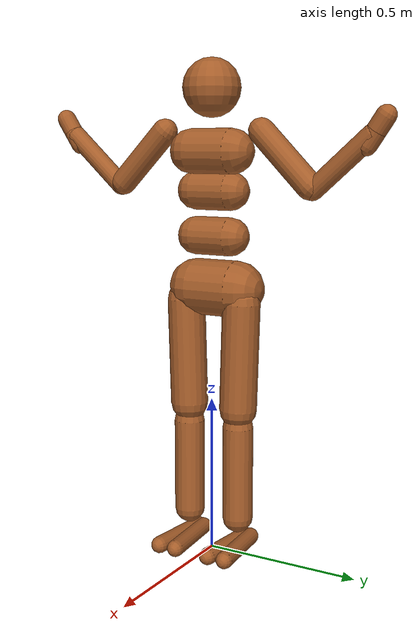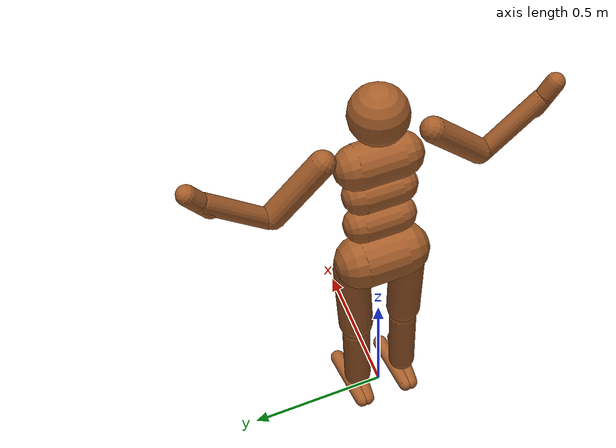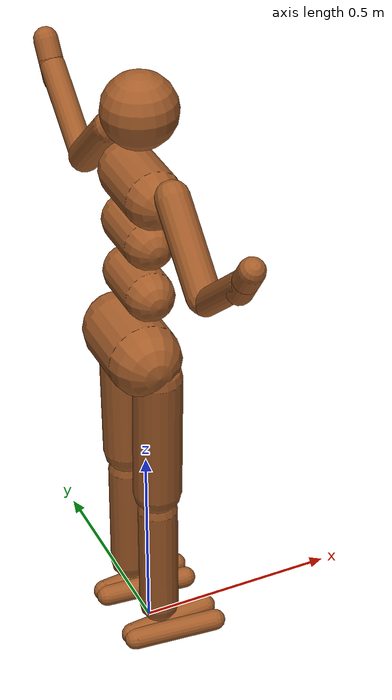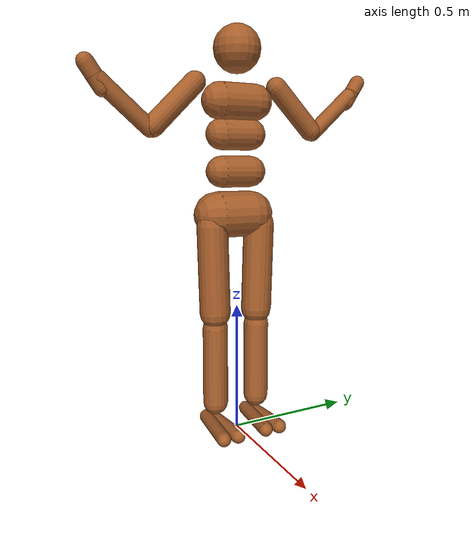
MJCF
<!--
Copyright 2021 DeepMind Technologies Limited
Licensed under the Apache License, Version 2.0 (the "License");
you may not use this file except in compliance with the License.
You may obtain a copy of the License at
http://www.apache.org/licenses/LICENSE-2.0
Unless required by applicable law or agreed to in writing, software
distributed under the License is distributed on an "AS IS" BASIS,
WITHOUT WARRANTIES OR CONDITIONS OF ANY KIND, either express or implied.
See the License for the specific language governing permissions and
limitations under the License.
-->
<mujoco model="Humanoid">
  <statistic center="0 0 0.7"/>

  <asset>
    <texture name="body" type="cube" builtin="flat" mark="cross" width="128"
      height="128" rgb1="0.8 0.6 0.4" rgb2="0.8 0.6 0.4" markrgb="1 1 1" random="0.01"/>
    <material name="body" texture="body" texuniform="true" rgba="0.8 0.6 .4 1"/>
  </asset>

  <default>
    <motor ctrlrange="-1 1" ctrllimited="true"/>
    <default class="body">
      <geom type="capsule" condim="1" friction=".7" solimp=".9 .99 .003"
        solref=".015 1" material="body" group="1" density="2000"/>
      <default class="thigh">
        <geom size=".06"/>
      </default>
      <default class="shin">
        <geom fromto="0 0 0 0 0 -.3"  size=".049"/>
      </default>
      <default class="foot">
        <geom size=".027"/>
        <default class="foot1">
          <geom fromto="-.07 -.01 0 .14 -.03 0"/>
        </default>
        <default class="foot2">
          <geom fromto="-.07 .01 0 .14  .03 0"/>
        </default>
      </default>
      <default class="arm_upper">
        <geom size=".04"/>
      </default>
      <default class="arm_lower">
        <geom size=".031"/>
      </default>
      <default class="hand">
        <geom type="capsule" margin=".002" gap=".002"  size=".03 .025"/>
        <site size=".1" pos="0 0 0" rgba="1 1 .5 0"/>
      </default>

      <!-- joints -->
      <joint type="hinge" damping=".2" stiffness="1" armature=".01"
        limited="true" solimplimit="0 .99 .01"/>
      <default class="joint_big">
        <joint damping="5" stiffness="10"/>
        <default class="hip_x">
          <joint range="-40 30"/>
        </default>
        <default class="hip_z">
          <joint range="-60 35"/>
        </default>
        <default class="joint_big_stiff">
          <joint stiffness="20"/>
        </default>
      </default>
      <default class="knee">
        <joint pos="0 0 .02" axis="-1 0 0" range="-160 90"/>
      </default>
      <default class="shoulder">
        <joint range="-180 60"/>
      </default>
      <default class="elbow">
        <joint range="-100 85" stiffness="0"/>
      </default>
      <default class="wrist">
        <joint range="-10 140" stiffness="3" pos="0 0 0"/>
      </default>
    </default>
  </default>

  <worldbody>
    <light name="spotlight" mode="targetbodycom" target="torso"
      diffuse=".8 .8 .8" specular="0.3 0.3 0.3" pos="0 -6 4" cutoff="30"/>
    <body name="torso" pos="0 0 1.282" childclass="body">
      <light name="top" pos="0 0 2" mode="trackcom"/>
      <camera name="back" pos="-5 0 0" xyaxes="0 -1 0 0 0 1" mode="trackcom"/>
      <camera name="side" pos="0 -3 1" xyaxes="1 0 0 0 1 2" mode="trackcom"/>
      <joint name="human_z_root" type="slide" axis="0 0 1" range="-10 10"/>
      <joint name="human_x_root" type="slide" axis="0 1 0" range="-3 3"/>
      <joint name="human_hinge_root" type="hinge" axis="1 0 0" range="-1000 1000"/>
      <geom name="torso" fromto="0 -.07 0 0 .07 0" size=".07"/>
      <geom name="waist_upper" fromto="-.01 -.06 -.12 -.01 .06 -.12" size=".06"/>
      <body name="head" pos="0 0 .19">
        <geom name="head" type="sphere" size=".09" contype="0" conaffinity="0"/>
        <camera name="egocentric" pos=".09 0 0" xyaxes="0 -1 0 .1 0 1" fovy="80"/>
      </body>
      <body name="waist_lower" pos="-.01 0 -.26">
        <geom name="waist_lower" fromto="0 -.06 0 0 .06 0" size=".06"/>
        <body name="pelvis" pos="0 0 -.165">
          <joint name="abdomen_x" pos="0 0 .1" axis="1 0 0" range="-35 35" class="joint_big"/>
          <geom name="butt" fromto="-.02 -.07 0 -.02 .07 0" size=".09"/>
          <body name="thigh_right" pos="0 -.1 -.04">
            <joint name="hip_x_right" axis="1 0 0" class="hip_x"/>
            <geom name="thigh_right" fromto="0 0 0 0 .01 -.34" class="thigh"/>
            <body name="shin_right" pos="0 .01 -.4">
              <joint name="knee_right" class="knee"/>
              <geom name="shin_right" class="shin"/>
              <body name="foot_right" pos="0 0 -.39">
                <site name="foot_right" pos="0 0 0" size="0.1" rgba="1 1 1 0"/>
                <geom name="foot1_right" class="foot1"/>
                <geom name="foot2_right" class="foot2"/>
              </body>
            </body>
          </body>
          <body name="thigh_left" pos="0 .1 -.04">
            <joint name="hip_x_left" axis="-1 0 0" class="hip_x"/>
            <geom name="thigh_left" fromto="0 0 0 0 -.01 -.34" class="thigh"/>
            <body name="shin_left" pos="0 -.01 -.4">
              <joint name="knee_left" class="knee"/>
              <geom name="shin_left" fromto="0 0 0 0 0 -.3" class="shin"/>
              <body name="foot_left" pos="0 0 -.39">
                <site name="foot_left" pos="0 0 0" size="0.1" rgba="1 1 1 0"/>
                <geom name="foot1_left" class="foot1"/>
                <geom name="foot2_left" class="foot2"/>
              </body>
            </body>
          </body>
        </body>
      </body>
      <!--Modified for 2d-->
      <body name="upper_arm_right" pos="0 -.17 .06">
        <site name="shoulder1_right" size="0.05" pos="0 0 0" rgba="1 1 .5 0"/>
        <joint name="shoulder1_right" axis="1 0 0"  class="shoulder"/>
        <geom name="upper_arm_right" fromto="0 0 0 0 -.16 -.16" class="arm_upper"/>
        <body name="lower_arm_right" pos="0 -.18 -.18">
          <joint name="elbow_right" axis="1 0 0" class="elbow"/>
          <site name="elbow_right" size="0.05" pos="0 0 0" rgba="1 1 .5 0"/>
          <geom name="lower_arm_right" fromto="0 .01 .01 0 -.17 .17" class="arm_lower"/>
          <body name="hand_right" pos="0 -.18 .18" zaxis="0 -1 1.5">
            <site name="hand_right" class="hand" size="0.5" rgba="1 1 .5 0"
              pos="0 0 0"/>
            <geom name="hand_right1" type="capsule" pos="0 0 -.025" class="hand"/>
            <site name="hand_right1" class="hand" pos="0 0 -.025" size="0.1"/> <!--Check size.-->
            <geom name="hand_right2"  type="capsule" pos="0 0 .025" class="hand"/>
            <site name="hand_right2" class="hand" pos="0 0 .025" size="0.1"/> <!--Check size.-->
            <joint name="wrist_right" axis="-1 0 0" class="wrist" stiffness="1"/>
              <!--friction="1 0.005 0.03"-->
          </body>
        </body>
      </body>
      <!--Modified for 2d-->
      <body name="upper_arm_left" pos="0 .17 .06">
        <joint name="shoulder1_left" axis="-1 0 0" class="shoulder"/>
        <site name="shoulder1_left" size="0.05" pos="0 0 0" rgba="1 1 .5 0"/>
        <geom name="upper_arm_left" fromto="0 0 0 0 .16 -.16" class="arm_upper"/>
        <body name="lower_arm_left" pos="0 .18 -.18">
          <joint name="elbow_left" axis="-1 0 0" class="elbow"/>
          <site name="elbow_left" size="0.05" pos="0 0 0" rgba="1 1 .5 0"/>
          <geom name="lower_arm_left" fromto="0 -.01 .01 0 .17 .17" class="arm_lower"/>
          <body name="hand_left" pos="0 .18 .18" zaxis="0 1 1.5">
            <site name="hand_left" class="hand" size="0.2" pos="0 0 0" rgba="1 1 .5 0"/>
            <geom name="hand_left1" type="capsule" class="hand" pos="0 0 -.025"/>
            <site name="hand_left1" class="hand" pos="0 0 -.025" size="0.1"/>
            <geom name="hand_left2" type="capsule" class="hand"
              pos="0 0 .025"/>
            <site name="hand_left2" class="hand" pos="0 0 .025" size="0.1"/>
            <joint name="wrist_left" axis="1 0 0" class="wrist" stiffness="1"
              springref=".6"/>
          </body>
        </body>
      </body>
    </body>
  </worldbody>

  <contact>
    <exclude body1="waist_lower" body2="thigh_right"/>
    <exclude body1="waist_lower" body2="thigh_left"/>
  </contact>

  <actuator>
    <motor name="knee_right"      gear="40"  joint="knee_right"/>
    <motor name="knee_left"       gear="40"  joint="knee_left"/>
    <motor name="abdomen_x"       gear="40"  joint="abdomen_x"/>
    <motor name="hip_x_right"     gear="40"  joint="hip_x_right"/>
    <motor name="hip_x_left"      gear="40"  joint="hip_x_left"/>
    <motor name="shoulder1_right" gear="100"  joint="shoulder1_right"/>
    <motor name="elbow_right"     gear="100"  joint="elbow_right"/>
    <motor name="shoulder1_left"  gear="100"  joint="shoulder1_left"/>
    <motor name="elbow_left"      gear="100"  joint="elbow_left"/>
    <motor name="wrist_left"      gear="40"  joint="wrist_left"/>
    <adhesion name="hand_right_adh" body="hand_right" gain="700"
      ctrlrange="0 1"/>
    <adhesion name="hand_left_adh" body="hand_left" gain="1000"
      ctrlrange="0 1"/>
  </actuator>

  <sensor>
    <touch name="hand_right1" site="hand_right1"/>
    <touch name="hand_right2" site="hand_right2"/>
    <touch name="hand_left1" site="hand_left1"/>
    <touch name="hand_left2" site="hand_left2"/>
    <touch name="foot_left" site="foot_left"/>
    <touch name="foot_right" site="foot_right"/>
  </sensor>

    <!--The values below are split into rows for readibility:-->
      <!--torso position-->
      <!--torso orientation-->
      <!--spinal-->
      <!--right leg-->
      <!--left leg-->
      <!--arms-->
    -->
         <!--qpos="0 0 0.596-->
         <!--qpos="0 0 1.21948-->
         <!--qpos="0.4 0 0.0757706-->
         <!--qpos="-0.4 0 0.08122-->
</mujoco>
